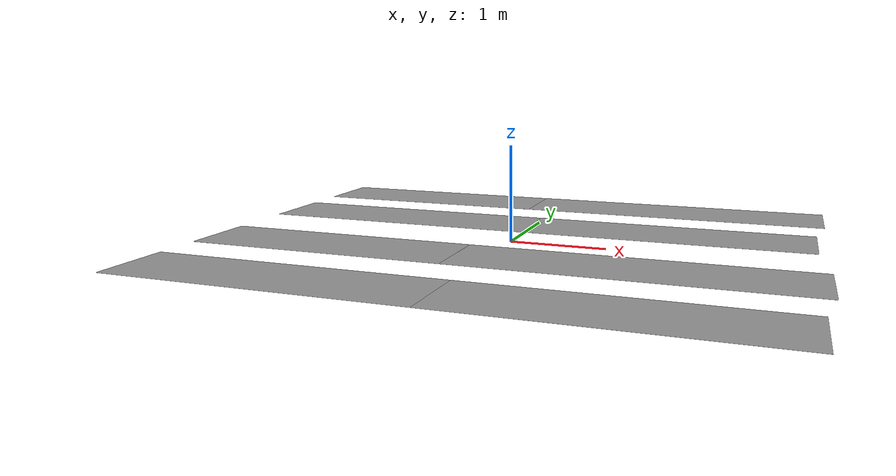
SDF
<?xml version="1.0"?>
<sdf version="1.4">
  <model name="cmp9767m_plant_textures">
  <static>true</static>
    <link name="texture_1_1">
      <pose frame=''>-1.540 -2.0 0.025 0 -0 0</pose>
      <collision name="collision">
        <geometry>
          <plane>
            <normal>0 0 1</normal>
            <size>3.076 0.793</size>
          </plane>
        </geometry>
        <surface>
          <friction>
            <ode>
              <mu>100</mu>
              <mu2>50</mu2>
            </ode>
          </friction>
        </surface>
      </collision>
      <visual name="visual">
        <cast_shadows>false</cast_shadows>
        <geometry>
          <plane>
            <normal>0 0 1</normal>
            <size>3.076 0.793</size>
          </plane>
        </geometry>
        <material>
          <script>
            <uri>model://cmp9767m_plant_textures/materials/scripts</uri>
            <uri>model://cmp9767m_plant_textures/materials/textures</uri>
            <name>cmp9767m_plant_textures/texture_1</name>
          </script>
        </material>
      </visual>
    </link>

    <link name="texture_1_2">
      <pose frame=''>1.50 -2.0 0.025 0 -0 0</pose>
      <collision name="collision">
        <geometry>
          <plane>
            <normal>0 0 1</normal>
            <size>3.040 0.793</size>
          </plane>
        </geometry>
        <surface>
          <friction>
            <ode>
              <mu>100</mu>
              <mu2>50</mu2>
            </ode>
          </friction>
        </surface>
      </collision>
      <visual name="visual">
        <cast_shadows>false</cast_shadows>
        <geometry>
          <plane>
            <normal>0 0 1</normal>
            <size>3.040 0.793</size>
          </plane>
        </geometry>
        <material>
          <script>
            <uri>model://cmp9767m_plant_textures/materials/scripts</uri>
            <uri>model://cmp9767m_plant_textures/materials/textures</uri>
            <name>cmp9767m_plant_textures/texture_2</name>
          </script>
        </material>
      </visual>
    </link>

    <link name="texture_2_1">
      <pose frame=''>-1.699 -0.75 0.025 0 -0 0</pose>
      <collision name="collision">
        <geometry>
          <plane>
            <normal>0 0 1</normal>
            <size>2.759 0.793</size>
          </plane>
        </geometry>
        <surface>
          <friction>
            <ode>
              <mu>100</mu>
              <mu2>50</mu2>
            </ode>
          </friction>
        </surface>
      </collision>
      <visual name="visual">
        <cast_shadows>false</cast_shadows>
        <geometry>
          <plane>
            <normal>0 0 1</normal>
            <size>2.759 0.793</size>
          </plane>
        </geometry>
        <material>
          <script>
            <uri>model://cmp9767m_plant_textures/materials/scripts</uri>
            <uri>model://cmp9767m_plant_textures/materials/textures</uri>
            <name>cmp9767m_plant_textures/texture_3</name>
          </script>
        </material>
      </visual>
    </link>

    <link name="texture_2_2">
      <pose frame=''>1.399 -0.75 0.025 0 -0 0</pose>
      <collision name="collision">
        <geometry>
          <plane>
            <normal>0 0 1</normal>
            <size>3.436 0.793</size>
          </plane>
        </geometry>
        <surface>
          <friction>
            <ode>
              <mu>100</mu>
              <mu2>50</mu2>
            </ode>
          </friction>
        </surface>
      </collision>
      <visual name="visual">
        <cast_shadows>false</cast_shadows>
        <geometry>
          <plane>
            <normal>0 0 1</normal>
            <size>3.436 0.793</size>
          </plane>
        </geometry>
        <material>
          <script>
            <uri>model://cmp9767m_plant_textures/materials/scripts</uri>
            <uri>model://cmp9767m_plant_textures/materials/textures</uri>
            <name>cmp9767m_plant_textures/texture_4</name>
          </script>
        </material>
      </visual>
    </link>

    <link name="texture_3_1">
      <pose frame=''>-1.540 0.75 0.025 0 -0 3.14</pose>
      <collision name="collision">
        <geometry>
          <plane>
            <normal>0 0 1</normal>
            <size>3.076 0.793</size>
          </plane>
        </geometry>
        <surface>
          <friction>
            <ode>
              <mu>100</mu>
              <mu2>50</mu2>
            </ode>
          </friction>
        </surface>
      </collision>
      <visual name="visual">
        <cast_shadows>false</cast_shadows>
        <geometry>
          <plane>
            <normal>0 0 1</normal>
            <size>3.076 0.793</size>
          </plane>
        </geometry>
        <material>
          <script>
            <uri>model://cmp9767m_plant_textures/materials/scripts</uri>
            <uri>model://cmp9767m_plant_textures/materials/textures</uri>
            <name>cmp9767m_plant_textures/texture_1</name>
          </script>
        </material>
      </visual>
    </link>

    <link name="texture_3_2">
      <pose frame=''>1.50 0.75 0.025 0 -0 3.14</pose>
      <collision name="collision">
        <geometry>
          <plane>
            <normal>0 0 1</normal>
            <size>3.040 0.793</size>
          </plane>
        </geometry>
        <surface>
          <friction>
            <ode>
              <mu>100</mu>
              <mu2>50</mu2>
            </ode>
          </friction>
        </surface>
      </collision>
      <visual name="visual">
        <cast_shadows>false</cast_shadows>
        <geometry>
          <plane>
            <normal>0 0 1</normal>
            <size>3.040 0.793</size>
          </plane>
        </geometry>
        <material>
          <script>
            <uri>model://cmp9767m_plant_textures/materials/scripts</uri>
            <uri>model://cmp9767m_plant_textures/materials/textures</uri>
            <name>cmp9767m_plant_textures/texture_2</name>
          </script>
        </material>
      </visual>
    </link>

    <link name="texture_4_1">
      <pose frame=''>-1.699 2.0 0.025 0 -0 3.14</pose>
      <collision name="collision">
        <geometry>
          <plane>
            <normal>0 0 1</normal>
            <size>2.759 0.793</size>
          </plane>
        </geometry>
        <surface>
          <friction>
            <ode>
              <mu>100</mu>
              <mu2>50</mu2>
            </ode>
          </friction>
        </surface>
      </collision>
      <visual name="visual">
        <cast_shadows>false</cast_shadows>
        <geometry>
          <plane>
            <normal>0 0 1</normal>
            <size>2.759 0.793</size>
          </plane>
        </geometry>
        <material>
          <script>
            <uri>model://cmp9767m_plant_textures/materials/scripts</uri>
            <uri>model://cmp9767m_plant_textures/materials/textures</uri>
            <name>cmp9767m_plant_textures/texture_3</name>
          </script>
        </material>
      </visual>
    </link>

    <link name="texture_4_2">
      <pose frame=''>1.399 2.0 0.025 0 -0 3.14</pose>
      <collision name="collision">
        <geometry>
          <plane>
            <normal>0 0 1</normal>
            <size>3.436 0.793</size>
          </plane>
        </geometry>
        <surface>
          <friction>
            <ode>
              <mu>100</mu>
              <mu2>50</mu2>
            </ode>
          </friction>
        </surface>
      </collision>
      <visual name="visual">
        <cast_shadows>false</cast_shadows>
        <geometry>
          <plane>
            <normal>0 0 1</normal>
            <size>3.436 0.793</size>
          </plane>
        </geometry>
        <material>
          <script>
            <uri>model://cmp9767m_plant_textures/materials/scripts</uri>
            <uri>model://cmp9767m_plant_textures/materials/textures</uri>
            <name>cmp9767m_plant_textures/texture_4</name>
          </script>
        </material>
      </visual>
    </link>
  </model>
</sdf>
